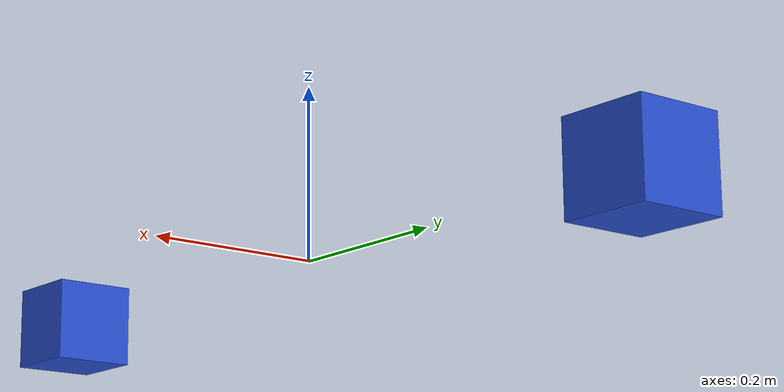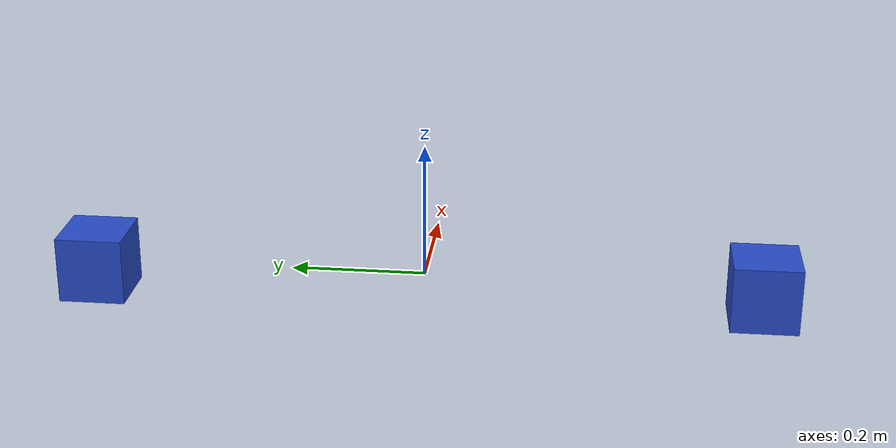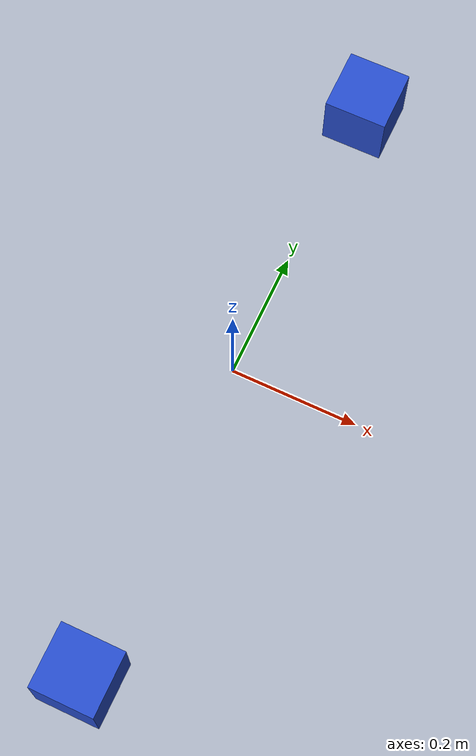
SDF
<?xml version="1.0" ?>
<sdf version="1.4">
  <model name="robot">
    <link name="gripper_l">
      <pose>0 -0.5 0 0 0 0</pose>
      <gravity>0</gravity>
      <inertial>
        <pose>0 0 0 0 0 0</pose>
        <inertia>
          <ixx>0.0016667</ixx>
          <ixy>0</ixy>
          <ixz>0</ixz>
          <iyy>0.0016667</iyy>
          <iyz>0</iyz>
          <izz>0.0016667</izz>
        </inertia>
        <mass>1.0</mass>
      </inertial>
      <collision name="gripper_l_col">
        <pose>0 0 0 0 0 0</pose>
        <geometry>
          <box>
            <size>0.1 0.1 0.1</size>
          </box>
        </geometry>
      </collision>
      <visual name="gripper_l_vis">
        <pose>0 0 0 0 0 0</pose>
        <geometry>
          <box>
            <size>0.1 0.1 0.1</size>
          </box>
        </geometry>
        <material>
          <script>
            <uri>file://media/materials/scripts/gazebo.material</uri>
            <name>Gazebo/Blue</name>
          </script>
        </material>
      </visual>
    </link>
    <link name="gripper_r">
      <pose>0 0.5 0 0 0 0</pose>
      <gravity>0</gravity>
      <inertial>
        <pose>0 0 0 0 0 0</pose>
        <inertia>
          <ixx>0.0016667</ixx>
          <ixy>0</ixy>
          <ixz>0</ixz>
          <iyy>0.0016667</iyy>
          <iyz>0</iyz>
          <izz>0.0016667</izz>
        </inertia>
        <mass>1.0</mass>
      </inertial>
      <collision name="gripper_r_col">
        <pose>0 0 0 0 0 0</pose>
        <geometry>
          <box>
            <size>0.1 0.1 0.1</size>
          </box>
        </geometry>
      </collision>
      <visual name="gripper_r_vis">
        <pose>0 0 0 0 0 0</pose>
        <geometry>
          <box>
            <size>0.1 0.1 0.1</size>
          </box>
        </geometry>
        <material>
          <script>
            <uri>file://media/materials/scripts/gazebo.material</uri>
            <name>Gazebo/Blue</name>
          </script>
        </material>
      </visual>
    </link>

    <joint name="actuator" type="prismatic">
      <parent>gripper_l</parent>
      <child>gripper_r</child>
      <axis>
        <dynamics>
          <damping>0.0</damping>
          <friction>0.0</friction>
        </dynamics>
        <xyz>0 1 0</xyz>
      </axis>
    </joint>

    <plugin name='block-grasp-controller' filename='libblock-grasp-controller.so'>
    </plugin>

  </model>
</sdf>
